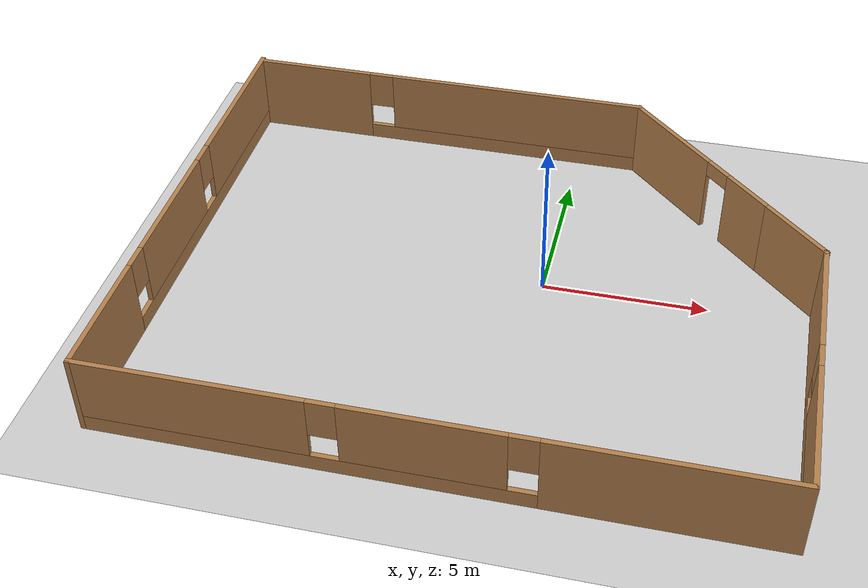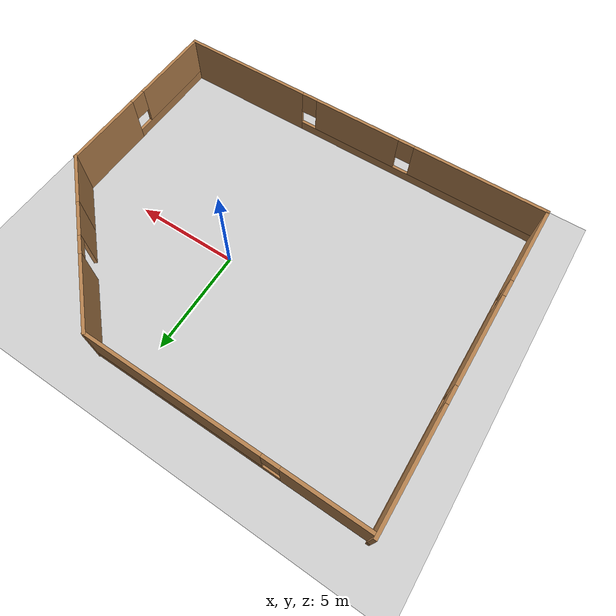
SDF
<sdf version="1.7">
 <world name="default">
  <light name="sun" type="directional">
   <pose>0 0 10 0 -0 0</pose>
   <diffuse>0.8 0.8 0.8 1</diffuse>
   <specular>0.2 0.2 0.2 1</specular>
   <attenuation>
    <range>1000</range>
    <constant>0.9</constant>
    <linear>0.01</linear>
    <quadratic>0.001</quadratic>
   </attenuation>
   <direction>-0.5 0.1 -0.9</direction>
   <spot><inner_angle>0</inner_angle><outer_angle>0</outer_angle><falloff>0</falloff></spot>
  </light>
  <model name="ground_plane">
   <static>1</static>
   <link name="link">
    <collision name="collision">
     <geometry><plane><normal>0 0 1</normal><size>100 100</size></plane></geometry>
     <surface>
      <contact><collide_bitmask>65535</collide_bitmask></contact>
      <friction><ode><mu>100</mu><mu2>50</mu2></ode></friction>
     </surface>
    </collision>
    <visual name="visual">
     <cast_shadows>0</cast_shadows>
     <geometry><plane><normal>0 0 1</normal><size>100 100</size></plane></geometry>
     <material>
      <script><uri>file://media/materials/scripts/gazebo.material</uri><name>Gazebo/Grey</name></script>
     </material>
    </visual>
   </link>
  </model>
  <gravity>0 0 -9.8</gravity>
  <magnetic_field>6e-06 2.3e-05 -4.2e-05</magnetic_field>
  <atmosphere type="adiabatic"/>
  <physics type="ode">
   <max_step_size>0.001</max_step_size>
   <real_time_factor>1</real_time_factor>
   <real_time_update_rate>1000</real_time_update_rate>
  </physics>
  <scene><ambient>0.4 0.4 0.4 1</ambient><background>0.7 0.7 0.7 1</background><shadows>1</shadows></scene>
  <audio><device>default</device></audio>
  <spherical_coordinates>
   <surface_model>EARTH_WGS84</surface_model>
   <latitude_deg>0</latitude_deg>
   <longitude_deg>0</longitude_deg>
   <elevation>0</elevation>
   <heading_deg>0</heading_deg>
  </spherical_coordinates>
  <model name="Warehouse">
   <pose>-1.49124 -0.858499 0 0 -0 0</pose>
   <link name="Wall_10">
    <collision name="Wall_10_Collision">
     <geometry><box><size>2.75 0.15 2.5</size></box></geometry>
     <pose>0 0 1.25 0 -0 0</pose>
    </collision>
    <visual name="Wall_10_Visual">
     <pose>0 0 1.25 0 -0 0</pose>
     <geometry><box><size>2.75 0.15 2.5</size></box></geometry>
     <material>
      <script><uri>file://media/materials/scripts/gazebo.material</uri><name>Gazebo/Wood</name></script>
      <ambient>1 1 1 1</ambient>
     </material>
     <meta><layer>0</layer></meta>
    </visual>
    <pose>8.61523 2.21924 0 0 -0 -0.785398</pose>
   </link>
   <link name="Wall_11">
    <pose>9.53447 -3.125 0 0 -0 -1.5708</pose>
    <visual name="Wall_11_Visual_0">
     <pose>-2.51437 0 1.25 0 -0 0</pose>
     <geometry><box><size>3.97126 0.15 2.5</size></box></geometry>
     <material>
      <script><uri>file://media/materials/scripts/gazebo.material</uri><name>Gazebo/Wood</name></script>
      <ambient>1 1 1 1</ambient>
     </material>
     <meta><layer>0</layer></meta>
    </visual>
    <collision name="Wall_11_Collision_0">
     <geometry><box><size>3.97126 0.15 2.5</size></box></geometry>
     <pose>-2.51437 0 1.25 0 -0 0</pose>
    </collision>
    <visual name="Wall_11_Visual_1">
     <pose>1.98563 0 0.25 0 -0 0</pose>
     <geometry><box><size>5.02874 0.15 0.5</size></box></geometry>
     <material>
      <script><uri>file://media/materials/scripts/gazebo.material</uri><name>Gazebo/Wood</name></script>
      <ambient>1 1 1 1</ambient>
     </material>
     <meta><layer>0</layer></meta>
    </visual>
    <collision name="Wall_11_Collision_1">
     <geometry><box><size>5.02874 0.15 0.5</size></box></geometry>
     <pose>1.98563 0 0.25 0 -0 0</pose>
    </collision>
    <visual name="Wall_11_Visual_2">
     <pose>2.38563 0 1.5 0 -0 0</pose>
     <geometry><box><size>4.22874 0.15 2</size></box></geometry>
     <material>
      <script><uri>file://media/materials/scripts/gazebo.material</uri><name>Gazebo/Wood</name></script>
      <ambient>1 1 1 1</ambient>
     </material>
     <meta><layer>0</layer></meta>
    </visual>
    <collision name="Wall_11_Collision_2">
     <geometry><box><size>4.22874 0.15 2</size></box></geometry>
     <pose>2.38563 0 1.5 0 -0 0</pose>
    </collision>
    <visual name="Wall_11_Visual_3">
     <pose>-0.128736 0 1.9 0 -0 0</pose>
     <geometry><box><size>0.8 0.15 1.2</size></box></geometry>
     <material>
      <script><uri>file://media/materials/scripts/gazebo.material</uri><name>Gazebo/Wood</name></script>
      <ambient>1 1 1 1</ambient>
     </material>
     <meta><layer>0</layer></meta>
    </visual>
    <collision name="Wall_11_Collision_3">
     <geometry><box><size>0.8 0.15 1.2</size></box></geometry>
     <pose>-0.128736 0 1.9 0 -0 0</pose>
    </collision>
   </link>
   <link name="Wall_12">
    <pose>-0.015532 -7.55 0 0 -0 3.14159</pose>
    <visual name="Wall_12_Visual_0">
     <pose>-6.28456 0 1.25 0 -0 0</pose>
     <geometry><box><size>6.68087 0.15 2.5</size></box></geometry>
     <material>
      <script><uri>file://media/materials/scripts/gazebo.material</uri><name>Gazebo/Wood</name></script>
      <ambient>1 1 1 1</ambient>
     </material>
     <meta><layer>0</layer></meta>
    </visual>
    <collision name="Wall_12_Collision_0">
     <geometry><box><size>6.68087 0.15 2.5</size></box></geometry>
     <pose>-6.28456 0 1.25 0 -0 0</pose>
    </collision>
    <visual name="Wall_12_Visual_1">
     <pose>3.34043 0 0.25 0 -0 0</pose>
     <geometry><box><size>12.5691 0.15 0.5</size></box></geometry>
     <material>
      <script><uri>file://media/materials/scripts/gazebo.material</uri><name>Gazebo/Wood</name></script>
      <ambient>1 1 1 1</ambient>
     </material>
     <meta><layer>0</layer></meta>
    </visual>
    <collision name="Wall_12_Collision_1">
     <geometry><box><size>12.5691 0.15 0.5</size></box></geometry>
     <pose>3.34043 0 0.25 0 -0 0</pose>
    </collision>
    <visual name="Wall_12_Visual_2">
     <pose>0.076689 0 1.5 0 -0 0</pose>
     <geometry><box><size>4.44164 0.15 2</size></box></geometry>
     <material>
      <script><uri>file://media/materials/scripts/gazebo.material</uri><name>Gazebo/Wood</name></script>
      <ambient>1 1 1 1</ambient>
     </material>
     <meta><layer>0</layer></meta>
    </visual>
    <collision name="Wall_12_Collision_2">
     <geometry><box><size>4.44164 0.15 2</size></box></geometry>
     <pose>0.076689 0 1.5 0 -0 0</pose>
    </collision>
    <visual name="Wall_12_Visual_3">
     <pose>6.36125 0 1.5 0 -0 0</pose>
     <geometry><box><size>6.52749 0.15 2</size></box></geometry>
     <material>
      <script><uri>file://media/materials/scripts/gazebo.material</uri><name>Gazebo/Wood</name></script>
      <ambient>1 1 1 1</ambient>
     </material>
     <meta><layer>0</layer></meta>
    </visual>
    <collision name="Wall_12_Collision_3">
     <geometry><box><size>6.52749 0.15 2</size></box></geometry>
     <pose>6.36125 0 1.5 0 -0 0</pose>
    </collision>
    <visual name="Wall_12_Visual_4">
     <pose>-2.54413 0 1.9 0 -0 0</pose>
     <geometry><box><size>0.8 0.15 1.2</size></box></geometry>
     <material>
      <script><uri>file://media/materials/scripts/gazebo.material</uri><name>Gazebo/Wood</name></script>
      <ambient>1 1 1 1</ambient>
     </material>
     <meta><layer>0</layer></meta>
    </visual>
    <collision name="Wall_12_Collision_4">
     <geometry><box><size>0.8 0.15 1.2</size></box></geometry>
     <pose>-2.54413 0 1.9 0 -0 0</pose>
    </collision>
    <visual name="Wall_12_Visual_5">
     <pose>2.69751 0 1.9 0 -0 0</pose>
     <geometry><box><size>0.8 0.15 1.2</size></box></geometry>
     <material>
      <script><uri>file://media/materials/scripts/gazebo.material</uri><name>Gazebo/Wood</name></script>
      <ambient>1 1 1 1</ambient>
     </material>
     <meta><layer>0</layer></meta>
    </visual>
    <collision name="Wall_12_Collision_5">
     <geometry><box><size>0.8 0.15 1.2</size></box></geometry>
     <pose>2.69751 0 1.9 0 -0 0</pose>
    </collision>
   </link>
   <link name="Wall_13">
    <pose>-9.56553 0 0 0 -0 1.5708</pose>
    <visual name="Wall_13_Visual_0">
     <pose>-5.63376 0 1.25 0 -0 0</pose>
     <geometry><box><size>3.98249 0.15 2.5</size></box></geometry>
     <material>
      <script><uri>file://media/materials/scripts/gazebo.material</uri><name>Gazebo/Wood</name></script>
      <ambient>1 1 1 1</ambient>
     </material>
     <meta><layer>0</layer></meta>
    </visual>
    <collision name="Wall_13_Collision_0">
     <geometry><box><size>3.98249 0.15 2.5</size></box></geometry>
     <pose>-5.63376 0 1.25 0 -0 0</pose>
    </collision>
    <visual name="Wall_13_Visual_1">
     <pose>1.99124 0 0.25 0 -0 0</pose>
     <geometry><box><size>11.2675 0.15 0.5</size></box></geometry>
     <material>
      <script><uri>file://media/materials/scripts/gazebo.material</uri><name>Gazebo/Wood</name></script>
      <ambient>1 1 1 1</ambient>
     </material>
     <meta><layer>0</layer></meta>
    </visual>
    <collision name="Wall_13_Collision_1">
     <geometry><box><size>11.2675 0.15 0.5</size></box></geometry>
     <pose>1.99124 0 0.25 0 -0 0</pose>
    </collision>
    <visual name="Wall_13_Visual_2">
     <pose>-0.674465 0 1.5 0 -0 0</pose>
     <geometry><box><size>4.3361 0.15 2</size></box></geometry>
     <material>
      <script><uri>file://media/materials/scripts/gazebo.material</uri><name>Gazebo/Wood</name></script>
      <ambient>1 1 1 1</ambient>
     </material>
     <meta><layer>0</layer></meta>
    </visual>
    <collision name="Wall_13_Collision_2">
     <geometry><box><size>4.3361 0.15 2</size></box></geometry>
     <pose>-0.674465 0 1.5 0 -0 0</pose>
    </collision>
    <visual name="Wall_13_Visual_3">
     <pose>4.95929 0 1.5 0 -0 0</pose>
     <geometry><box><size>5.33142 0.15 2</size></box></geometry>
     <material>
      <script><uri>file://media/materials/scripts/gazebo.material</uri><name>Gazebo/Wood</name></script>
      <ambient>1 1 1 1</ambient>
     </material>
     <meta><layer>0</layer></meta>
    </visual>
    <collision name="Wall_13_Collision_3">
     <geometry><box><size>5.33142 0.15 2</size></box></geometry>
     <pose>4.95929 0 1.5 0 -0 0</pose>
    </collision>
    <visual name="Wall_13_Visual_4">
     <pose>-3.24252 0 1.9 0 -0 0</pose>
     <geometry><box><size>0.8 0.15 1.2</size></box></geometry>
     <material>
      <script><uri>file://media/materials/scripts/gazebo.material</uri><name>Gazebo/Wood</name></script>
      <ambient>1 1 1 1</ambient>
     </material>
     <meta><layer>0</layer></meta>
    </visual>
    <collision name="Wall_13_Collision_4">
     <geometry><box><size>0.8 0.15 1.2</size></box></geometry>
     <pose>-3.24252 0 1.9 0 -0 0</pose>
    </collision>
    <visual name="Wall_13_Visual_5">
     <pose>1.89358 0 1.9 0 -0 0</pose>
     <geometry><box><size>0.8 0.15 1.2</size></box></geometry>
     <material>
      <script><uri>file://media/materials/scripts/gazebo.material</uri><name>Gazebo/Wood</name></script>
      <ambient>1 1 1 1</ambient>
     </material>
     <meta><layer>0</layer></meta>
    </visual>
    <collision name="Wall_13_Collision_5">
     <geometry><box><size>0.8 0.15 1.2</size></box></geometry>
     <pose>1.89358 0 1.9 0 -0 0</pose>
    </collision>
   </link>
   <link name="Wall_8">
    <pose>-3.04236 7.45183 0 0 -0 0</pose>
    <visual name="Wall_8_Visual_0">
     <pose>-4.58695 0 1.25 0 -0 0</pose>
     <geometry><box><size>3.82609 0.15 2.5</size></box></geometry>
     <material>
      <script><uri>file://media/materials/scripts/gazebo.material</uri><name>Gazebo/Wood</name></script>
      <ambient>1 1 1 1</ambient>
     </material>
     <meta><layer>0</layer></meta>
    </visual>
    <collision name="Wall_8_Collision_0">
     <geometry><box><size>3.82609 0.15 2.5</size></box></geometry>
     <pose>-4.58695 0 1.25 0 -0 0</pose>
    </collision>
    <visual name="Wall_8_Visual_1">
     <pose>1.91305 0 0.25 0 -0 0</pose>
     <geometry><box><size>9.17391 0.15 0.5</size></box></geometry>
     <material>
      <script><uri>file://media/materials/scripts/gazebo.material</uri><name>Gazebo/Wood</name></script>
      <ambient>1 1 1 1</ambient>
     </material>
     <meta><layer>0</layer></meta>
    </visual>
    <collision name="Wall_8_Collision_1">
     <geometry><box><size>9.17391 0.15 0.5</size></box></geometry>
     <pose>1.91305 0 0.25 0 -0 0</pose>
    </collision>
    <visual name="Wall_8_Visual_2">
     <pose>2.31305 0 1.5 0 -0 0</pose>
     <geometry><box><size>8.37391 0.15 2</size></box></geometry>
     <material>
      <script><uri>file://media/materials/scripts/gazebo.material</uri><name>Gazebo/Wood</name></script>
      <ambient>1 1 1 1</ambient>
     </material>
     <meta><layer>0</layer></meta>
    </visual>
    <collision name="Wall_8_Collision_2">
     <geometry><box><size>8.37391 0.15 2</size></box></geometry>
     <pose>2.31305 0 1.5 0 -0 0</pose>
    </collision>
    <visual name="Wall_8_Visual_3">
     <pose>-2.27391 0 1.9 0 -0 0</pose>
     <geometry><box><size>0.8 0.15 1.2</size></box></geometry>
     <material>
      <script><uri>file://media/materials/scripts/gazebo.material</uri><name>Gazebo/Wood</name></script>
      <ambient>1 1 1 1</ambient>
     </material>
     <meta><layer>0</layer></meta>
    </visual>
    <collision name="Wall_8_Collision_3">
     <geometry><box><size>0.8 0.15 1.2</size></box></geometry>
     <pose>-2.27391 0 1.9 0 -0 0</pose>
    </collision>
   </link>
   <link name="Wall_9">
    <pose>5.53931 5.29515 0 0 -0 -0.785398</pose>
    <visual name="Wall_9_Visual_0">
     <pose>-1.3135 0 1.25 0 -0 0</pose>
     <geometry><box><size>3.623 0.15 2.5</size></box></geometry>
     <material>
      <script><uri>file://media/materials/scripts/gazebo.material</uri><name>Gazebo/Wood</name></script>
      <ambient>1 1 1 1</ambient>
     </material>
     <meta><layer>0</layer></meta>
    </visual>
    <collision name="Wall_9_Collision_0">
     <geometry><box><size>3.623 0.15 2.5</size></box></geometry>
     <pose>-1.3135 0 1.25 0 -0 0</pose>
    </collision>
    <visual name="Wall_9_Visual_1">
     <pose>2.2615 0 1.25 0 -0 0</pose>
     <geometry><box><size>1.727 0.15 2.5</size></box></geometry>
     <material>
      <script><uri>file://media/materials/scripts/gazebo.material</uri><name>Gazebo/Wood</name></script>
      <ambient>1 1 1 1</ambient>
     </material>
     <meta><layer>0</layer></meta>
    </visual>
    <collision name="Wall_9_Collision_1">
     <geometry><box><size>1.727 0.15 2.5</size></box></geometry>
     <pose>2.2615 0 1.25 0 -0 0</pose>
    </collision>
    <visual name="Wall_9_Visual_2">
     <pose>0.948002 0 2.25 0 -0 0</pose>
     <geometry><box><size>0.9 0.15 0.5</size></box></geometry>
     <material>
      <script><uri>file://media/materials/scripts/gazebo.material</uri><name>Gazebo/Wood</name></script>
      <ambient>1 1 1 1</ambient>
     </material>
     <meta><layer>0</layer></meta>
    </visual>
    <collision name="Wall_9_Collision_2">
     <geometry><box><size>0.9 0.15 0.5</size></box></geometry>
     <pose>0.948002 0 2.25 0 -0 0</pose>
    </collision>
   </link>
   <static>1</static>
  </model>
 </world>
</sdf>
